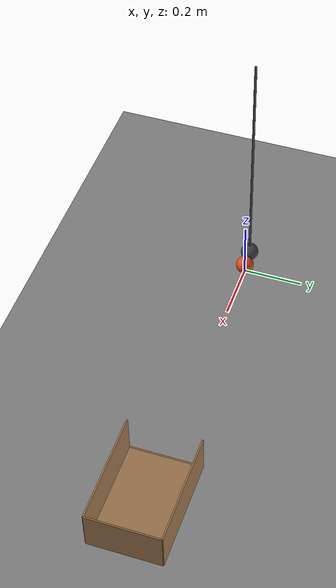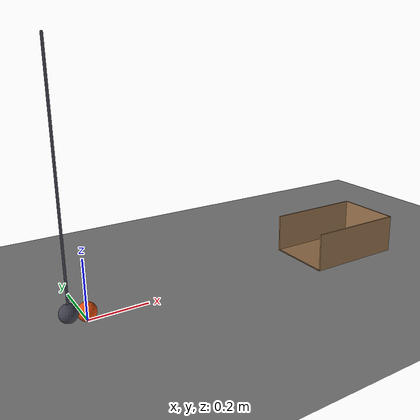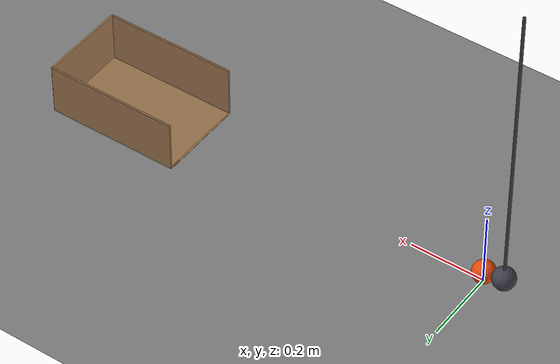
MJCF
<mujoco model="pendulum_rolls_a_ball_into_a_cup">
  <compiler angle="radian"/>
  <option timestep="0.002"/>
  <worldbody>
    <geom name="floor" type="plane" size="4 4 0.1" friction="0.6 0.001 0.0002"/>
    <body name="ball" pos="0 0 0.03">
      <freejoint/>
      <geom name="ball" type="sphere" pos="0 0 0" size="0.03" mass="0.05" condim="6" friction="0.6 0.001 0.0002" solref="0.01 1" rgba="0.9 0.3 0.05 1"/>
    </body>
    <body name="pendulum" pos="-0.055 0 0.84">
      <joint name="pendulum_hinge" type="hinge" pos="0 0 0" axis="0 1 0" damping="0.005"/>
      <geom name="pendulum" type="sphere" pos="0 0 -0.8" size="0.03" mass="0.2" friction="0.6 0.001 0.0002" solref="0.01 1" rgba="0.25 0.25 0.3 1"/>
      <geom name="pendulum rod" type="capsule" size="0.004" fromto="0 0 0 6.93889e-18 0 -0.77" mass="0.015" rgba="0.25 0.25 0.3 1"/>
    </body>
    <body name="cup">
      <geom name="cup_base" type="box" pos="1 0 0.0005" size="0.18 0.12 0.0005" friction="0.8 0.01 0.008" solref="0.01 1" rgba="0.6 0.45 0.3 1"/>
      <geom name="cup_near_wall" type="box" pos="0.82 0 0.0005" size="0.0025 0.12 0.0005" friction="0.8 0.01 0.008" solref="0.01 1" rgba="0.6 0.45 0.3 1"/>
      <geom name="cup_far_wall" type="box" pos="1.18 0 0.07" size="0.0025 0.12 0.07" friction="0.8 0.01 0.008" solref="0.01 1" rgba="0.6 0.45 0.3 1"/>
      <geom name="cup_left_wall" type="box" pos="1 0.12 0.07" size="0.18 0.0025 0.07" friction="0.8 0.01 0.008" solref="0.01 1" rgba="0.6 0.45 0.3 1"/>
      <geom name="cup_right_wall" type="box" pos="1 -0.12 0.07" size="0.18 0.0025 0.07" friction="0.8 0.01 0.008" solref="0.01 1" rgba="0.6 0.45 0.3 1"/>
    </body>
  </worldbody>
  <keyframe>
    <key name="start" qpos="0 0 0.03 1 0 0 0 0.523599" qvel="0 0 0 0 0 0 0"/>
  </keyframe>
</mujoco>
